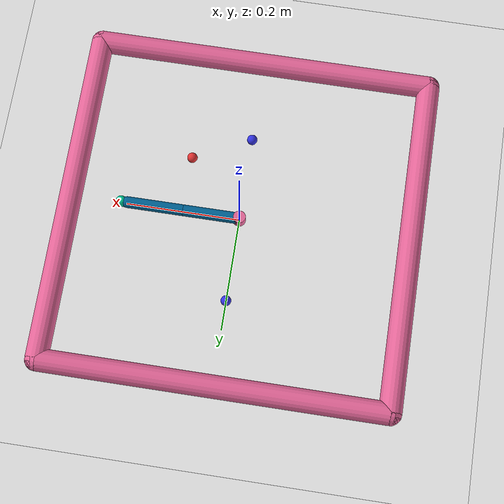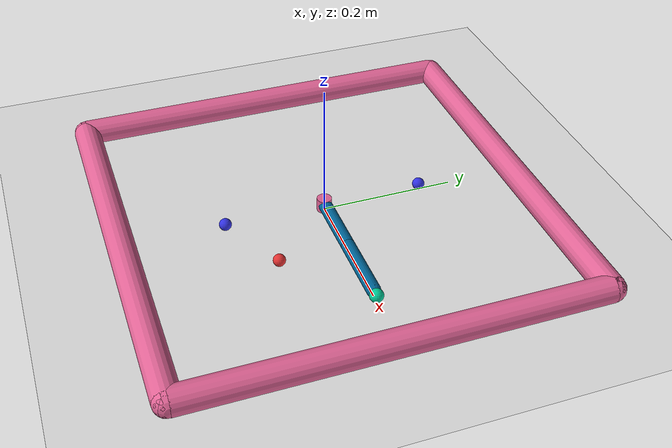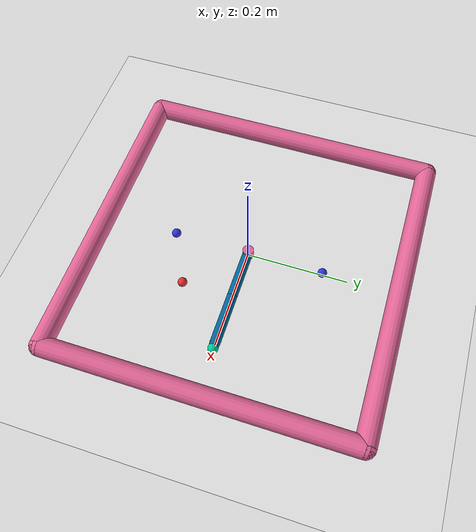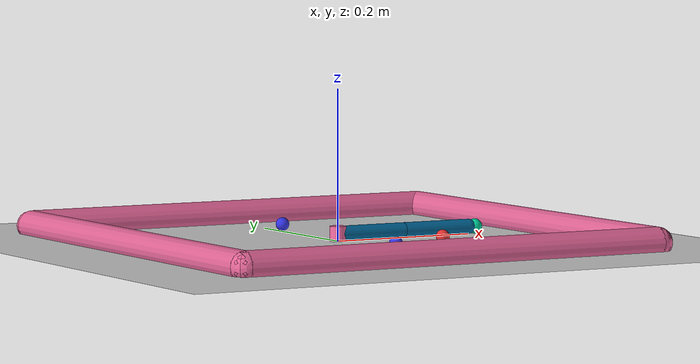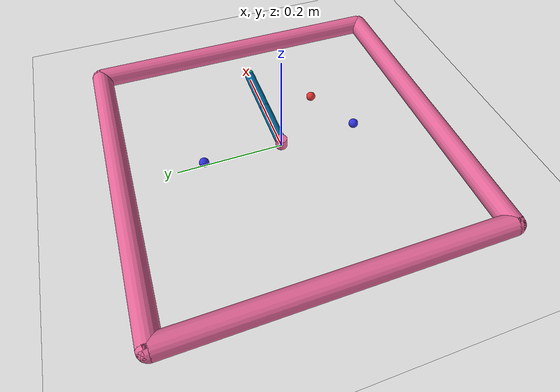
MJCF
<mujoco model="reacher_obs">
	<compiler angle="radian" inertiafromgeom="true"/>
	<default>
		<joint armature="1" damping="1" limited="true"/>
		<geom contype="0" friction="1 0.1 0.1" rgba="0.7 0.7 0 1"/>
	</default>
	<option gravity="0 0 -9.81" integrator="RK4" timestep="0.01"/>
	<worldbody>
		<!-- Arena -->
		<geom conaffinity="0" contype="0" name="ground" pos="0 0 0" rgba="0.9 0.9 0.9 1" size="1 1 10" type="plane"/>
		<geom conaffinity="0" fromto="-.3 -.3 .01 .3 -.3 .01" name="sideS" rgba="0.9 0.4 0.6 1" size=".02" type="capsule"/>
		<geom conaffinity="0" fromto=" .3 -.3 .01 .3  .3 .01" name="sideE" rgba="0.9 0.4 0.6 1" size=".02" type="capsule"/>
		<geom conaffinity="0" fromto="-.3  .3 .01 .3  .3 .01" name="sideN" rgba="0.9 0.4 0.6 1" size=".02" type="capsule"/>
		<geom conaffinity="0" fromto="-.3 -.3 .01 -.3 .3 .01" name="sideW" rgba="0.9 0.4 0.6 1" size=".02" type="capsule"/>
		<!-- Arm -->
		<geom conaffinity="0" contype="0" fromto="0 0 0 0 0 0.02" name="root" rgba="0.9 0.4 0.6 1" size=".011" type="cylinder"/>
		<body name="body0" pos="0 0 .01">
			<geom fromto="0 0 0 0.1 0 0" name="link0" rgba="0.0 0.4 0.6 1" size=".01" type="capsule"/>
			<joint axis="0 0 1" limited="false" name="joint0" pos="0 0 0" type="hinge"/>
			<body name="body1" pos="0.1 0 0">
				<joint axis="0 0 1" limited="true" name="joint1" pos="0 0 0" range="-3.0 3.0" type="hinge"/>
				<geom fromto="0 0 0 0.1 0 0" name="link1" rgba="0.0 0.4 0.6 1" size=".01" type="capsule"/>
				<body name="fingertip" pos="0.11 0 0">
					<geom contype="0" name="fingertip" pos="0 0 0" rgba="0.0 0.8 0.6 1" size=".01" type="sphere"/>
				</body>
			</body>
		</body>
		<!-- Target -->
		<body name="target" pos=".1 -.1 .01">
			<joint armature="0" axis="1 0 0" damping="0" limited="true" name="target_x" pos="0 0 0" range="-.27 .27" ref=".1" stiffness="0" type="slide"/>
			<joint armature="0" axis="0 1 0" damping="0" limited="true" name="target_y" pos="0 0 0" range="-.27 .27" ref="-.1" stiffness="0" type="slide"/>
			<geom conaffinity="0" contype="0" name="target" pos="0 0 0" rgba="0.9 0.2 0.2 1" size=".009" type="sphere"/>
		</body>
		<!-- obstacle -->
		<body name="obs1" pos=".0 .15 .01">
			<joint armature="0" axis="1 0 0" damping="0" limited="true" name="obs1_x" pos="0 0 0" range="-.27 .27" ref=".1" stiffness="0" type="slide"/>
			<joint armature="0" axis="0 1 0" damping="0" limited="true" name="obs1_y" pos="0 0 0" range="-.27 .27" ref="-.1" stiffness="0" type="slide"/>
			<geom conaffinity="0" contype="1" name="obs1" pos="0 0 0" rgba="0.2 0.2 0.9 1" size=".009" type="sphere"/>
			<!-- set contype to 1 for contact detect-->
		</body>
		<body name="obs2" pos=".0 -.15 .01">
			<joint armature="0" axis="1 0 0" damping="0" limited="true" name="obs2_x" pos="0 0 0" range="-.27 .27" ref=".1" stiffness="0" type="slide"/>
			<joint armature="0" axis="0 1 0" damping="0" limited="true" name="obs2_y" pos="0 0 0" range="-.27 .27" ref="-.1" stiffness="0" type="slide"/>
			<geom conaffinity="0" contype="1" name="obs2" pos="0 0 0" rgba="0.2 0.2 0.9 1" size=".009" type="sphere"/>
		</body>
	</worldbody>
	<actuator>
		<motor ctrllimited="true" ctrlrange="-1.0 1.0" gear="200.0" joint="joint0"/>
		<motor ctrllimited="true" ctrlrange="-1.0 1.0" gear="200.0" joint="joint1"/>
	</actuator>
</mujoco>
